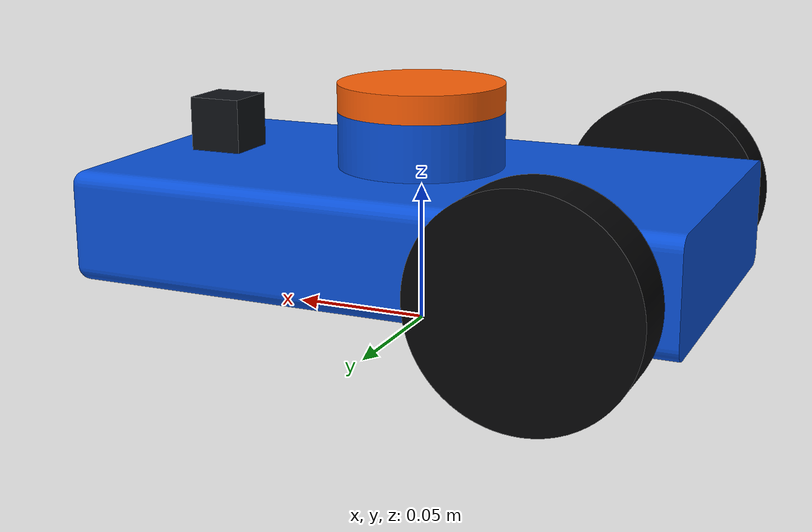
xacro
<?xml version="1.0" ?>
<robot name="Samuel_WS2" xmlns:xacro="http://www.ros.org/wiki/xacro">

<xacro:include filename="$(find Samuel_WS2_description)/urdf/materials.xacro" />
<xacro:include filename="$(find Samuel_WS2_description)/urdf/Samuel_WS2.ros2control" />
<xacro:include filename="$(find Samuel_WS2_description)/urdf/Samuel_WS2.gazebo" />
<link name="base_link">
  <inertial>
    <origin xyz="-0.0005551788655431004 1.635079723729691e-17 0.039024938736074176" rpy="0 0 0"/>
    <mass value="8.73294837591391"/>
    <inertia ixx="0.01159" iyy="0.034957" izz="0.04358" ixy="-0.0" iyz="-0.0" ixz="-7e-06"/>
  </inertial>
  <visual>
    <origin xyz="0 0 0" rpy="0 0 0"/>
    <geometry>
      <mesh filename="file://$(find Samuel_WS2_description)/meshes/base_link.stl" scale="0.001 0.001 0.001"/>
    </geometry>
    <material name="blue"><color rgba="0.04 0.32 0.85 1"/></material>
  </visual>
  <collision>
    <origin xyz="0 0 0" rpy="0 0 0"/>
    <geometry>
      <mesh filename="file://$(find Samuel_WS2_description)/meshes/base_link.stl" scale="0.001 0.001 0.001"/>
    </geometry>
  </collision>
</link>

<link name="lidar_1">
  <inertial>
    <origin xyz="1.0052123437711858e-17 0.0 0.0050000000000000044" rpy="0 0 0"/>
    <mass value="0.2219535209761188"/>
    <inertia ixx="5.2e-05" iyy="5.2e-05" izz="0.0001" ixy="0.0" iyz="-0.0" ixz="-0.0"/>
  </inertial>
  <visual>
    <origin xyz="-0.0 -0.0 -0.0775" rpy="0 0 0"/>
    <geometry>
      <mesh filename="file://$(find Samuel_WS2_description)/meshes/lidar_1.stl" scale="0.001 0.001 0.001"/>
    </geometry>
    <material name="orange"><color rgba="1 0.38 0.03 1"/></material>
  </visual>
  <collision>
    <origin xyz="-0.0 -0.0 -0.0775" rpy="0 0 0"/>
    <geometry>
      <mesh filename="file://$(find Samuel_WS2_description)/meshes/lidar_1.stl" scale="0.001 0.001 0.001"/>
    </geometry>
  </collision>
</link>

<link name="camera_1">
  <inertial>
    <origin xyz="-0.029774204142965555 -6.487383716397043e-18 0.00999018280844411" rpy="0 0 0"/>
    <mass value="0.06405773665634809"/>
    <inertia ixx="4e-06" iyy="4e-06" izz="4e-06" ixy="-0.0" iyz="0.0" ixz="0.0"/>
  </inertial>
  <visual>
    <origin xyz="-0.11 -0.0 -0.0575" rpy="0 0 0"/>
    <geometry>
      <mesh filename="file://$(find Samuel_WS2_description)/meshes/camera_1.stl" scale="0.001 0.001 0.001"/>
    </geometry>
    <material name="dark"><color rgba="0.06 0.07 0.09 1"/></material>
  </visual>
  <collision>
    <origin xyz="-0.11 -0.0 -0.0575" rpy="0 0 0"/>
    <geometry>
      <mesh filename="file://$(find Samuel_WS2_description)/meshes/camera_1.stl" scale="0.001 0.001 0.001"/>
    </geometry>
  </collision>
</link>

<link name="castor_1">
  <inertial>
    <origin xyz="0.06249999999999999 -3.4277710037994564e-18 -0.006391402495744707" rpy="0 0 0"/>
    <mass value="0.1627226693245905"/>
    <inertia ixx="2.2e-05" iyy="2.2e-05" izz="3.8e-05" ixy="-0.0" iyz="-0.0" ixz="-0.0"/>
  </inertial>
  <visual>
    <origin xyz="0.0025 -0.0 -0.0175" rpy="0 0 0"/>
    <geometry>
      <mesh filename="file://$(find Samuel_WS2_description)/meshes/castor_1.stl" scale="0.001 0.001 0.001"/>
    </geometry>
    <material name="gray"><color rgba="0.4 0.45 0.5 1"/></material>
  </visual>
  <collision>
    <origin xyz="0.0625 0 -0.005" rpy="0 0 0"/>
    <geometry><sphere radius="0.0125"/></geometry>
  </collision>
</link>

<link name="left_wheel_1">
  <inertial>
    <origin xyz="-2.0816681711721685e-16 0.010000000000000023 6.938893903907228e-17" rpy="0 0 0"/>
    <mass value="0.6936047530503714"/>
    <inertia ixx="0.000267" iyy="0.000488" izz="0.000267" ixy="-0.0" iyz="0.0" ixz="-0.0"/>
  </inertial>
  <visual>
    <origin xyz="0.07 -0.07 -0.0375" rpy="0 0 0"/>
    <geometry>
      <mesh filename="file://$(find Samuel_WS2_description)/meshes/left_wheel_1.stl" scale="0.001 0.001 0.001"/>
    </geometry>
    <material name="rubber"><color rgba="0.025 0.025 0.03 1"/></material>
  </visual>
  <collision>
    <origin xyz="0 0.01 0" rpy="1.57079632679 0 0"/>
    <geometry><cylinder radius="0.0375" length="0.02"/></geometry>
  </collision>
</link>

<link name="right_wheel_1">
  <inertial>
    <origin xyz="-4.163336342344337e-17 -0.009999999999999995 1.457167719820518e-16" rpy="0 0 0"/>
    <mass value="0.6936047530503714"/>
    <inertia ixx="0.000267" iyy="0.000488" izz="0.000267" ixy="-0.0" iyz="-0.0" ixz="-0.0"/>
  </inertial>
  <visual>
    <origin xyz="0.07 0.07 -0.0375" rpy="0 0 0"/>
    <geometry>
      <mesh filename="file://$(find Samuel_WS2_description)/meshes/right_wheel_1.stl" scale="0.001 0.001 0.001"/>
    </geometry>
    <material name="rubber"><color rgba="0.025 0.025 0.03 1"/></material>
  </visual>
  <collision>
    <origin xyz="0 -0.01 0" rpy="1.57079632679 0 0"/>
    <geometry><cylinder radius="0.0375" length="0.02"/></geometry>
  </collision>
</link>

<joint name="lidarjoint" type="fixed">
  <origin xyz="0.0 0.0 0.0775" rpy="0 0 0"/>
  <parent link="base_link"/>
  <child link="lidar_1"/>
</joint>

<joint name="camerajoint" type="fixed">
  <origin xyz="0.11 0.0 0.0575" rpy="0 0 0"/>
  <parent link="base_link"/>
  <child link="camera_1"/>
</joint>

<joint name="castorjoint" type="fixed">
  <origin xyz="-0.0025 0.0 0.0175" rpy="0 0 0"/>
  <parent link="base_link"/>
  <child link="castor_1"/>
</joint>

<joint name="left_joint" type="continuous">
  <origin xyz="-0.07 0.07 0.0375" rpy="0 0 0"/>
  <parent link="base_link"/>
  <child link="left_wheel_1"/>
  <axis xyz="0.0 1.0 0.0"/>
</joint>

<joint name="right_joint" type="continuous">
  <origin xyz="-0.07 -0.07 0.0375" rpy="0 0 0"/>
  <parent link="base_link"/>
  <child link="right_wheel_1"/>
  <axis xyz="0.0 1.0 0.0"/>
</joint>

</robot>

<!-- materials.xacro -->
<robot name="Samuel_WS2" xmlns:xacro="http://www.ros.org/wiki/xacro" >

<material name="silver">
  <color rgba="0.700 0.700 0.700 1.000"/>
</material>

</robot>
